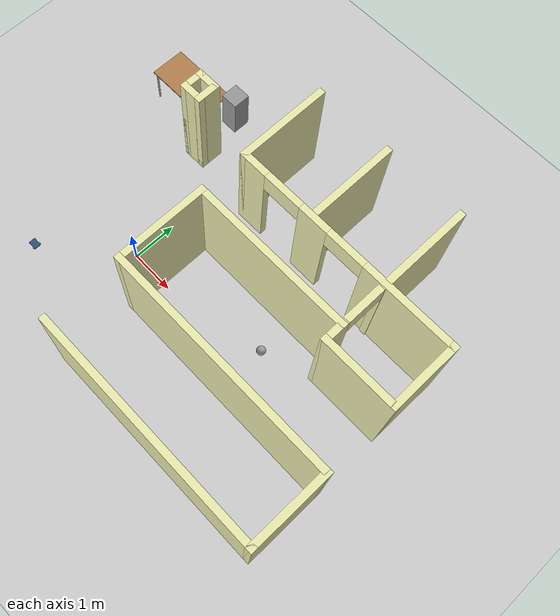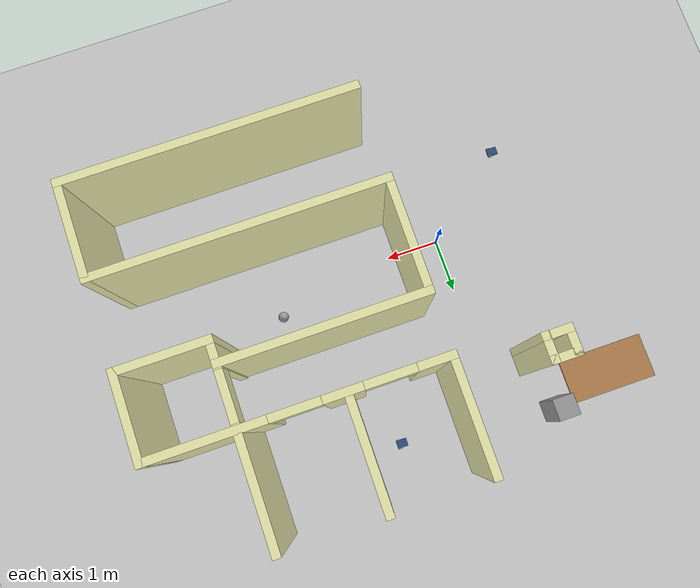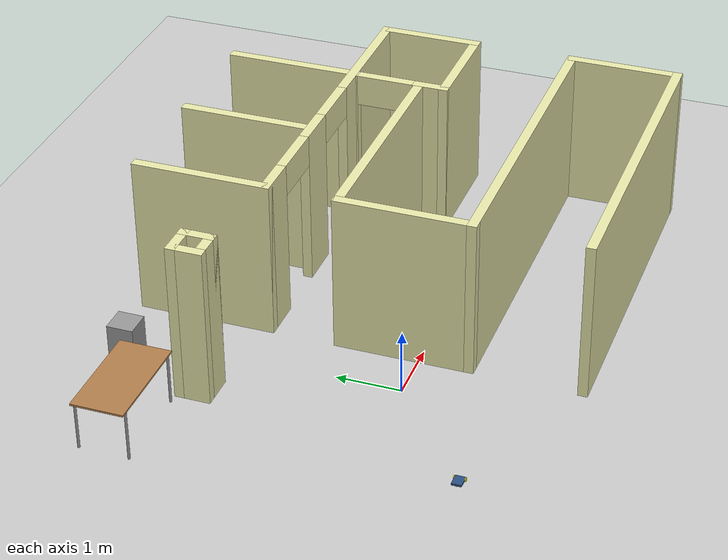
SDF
<sdf version="1.6">
 <world name="default">
  <model name="ground_plane">
   <static>1</static>
   <link name="link">
    <collision name="collision">
     <geometry><plane><normal>0 0 1</normal><size>100 100</size></plane></geometry>
     <surface><friction><ode><mu>100</mu><mu2>50</mu2></ode></friction></surface>
    </collision>
    <visual name="visual">
     <cast_shadows>0</cast_shadows>
     <geometry><plane><normal>0 0 1</normal><size>100 100</size></plane></geometry>
     <material>
      <script><uri>file://media/materials/scripts/gazebo.material</uri><name>Gazebo/Grey</name></script>
     </material>
    </visual>
   </link>
  </model>
  <model name="Building">
   <link name="Wall_113">
    <collision name="Wall_113_Collision">
     <geometry><box><size>1.75 0.15 2.5</size></box></geometry>
     <pose>0 0 1.25 0 -0 0</pose>
    </collision>
    <visual name="Wall_113_Visual">
     <pose>0 0 1.25 0 -0 0</pose>
     <geometry><box><size>1.75 0.15 2.5</size></box></geometry>
     <material>
      <script><uri>file://media/materials/scripts/gazebo.material</uri><name>Gazebo/Grey</name></script>
      <ambient>0.92 0.92 0.68 1</ambient>
     </material>
     <meta><layer>0</layer></meta>
    </visual>
    <pose>5.2 0.836388 0 0 -0 3.14159</pose>
   </link>
   <link name="Wall_115">
    <pose>4.4 1.51139 0 0 -0 1.5708</pose>
    <visual name="Wall_115_Visual_0">
     <pose>-0.461821 0 1.25 0 -0 0</pose>
     <geometry><box><size>0.576358 0.15 2.5</size></box></geometry>
     <material>
      <script><uri>file://media/materials/scripts/gazebo.material</uri><name>Gazebo/Grey</name></script>
      <ambient>0.92 0.92 0.68 1</ambient>
     </material>
     <meta><layer>0</layer></meta>
    </visual>
    <collision name="Wall_115_Collision_0">
     <geometry><box><size>0.576358 0.15 2.5</size></box></geometry>
     <pose>-0.461821 0 1.25 0 -0 0</pose>
    </collision>
    <visual name="Wall_115_Visual_1">
     <pose>0.738179 0 1.25 0 -0 0</pose>
     <geometry><box><size>0.023642 0.15 2.5</size></box></geometry>
     <material>
      <script><uri>file://media/materials/scripts/gazebo.material</uri><name>Gazebo/Grey</name></script>
      <ambient>0.92 0.92 0.68 1</ambient>
     </material>
     <meta><layer>0</layer></meta>
    </visual>
    <collision name="Wall_115_Collision_1">
     <geometry><box><size>0.023642 0.15 2.5</size></box></geometry>
     <pose>0.738179 0 1.25 0 -0 0</pose>
    </collision>
    <visual name="Wall_115_Visual_2">
     <pose>0.276358 0 2.25 0 -0 0</pose>
     <geometry><box><size>0.9 0.15 0.5</size></box></geometry>
     <material>
      <script><uri>file://media/materials/scripts/gazebo.material</uri><name>Gazebo/Grey</name></script>
      <ambient>0.92 0.92 0.68 1</ambient>
     </material>
     <meta><layer>0</layer></meta>
    </visual>
    <collision name="Wall_115_Collision_2">
     <geometry><box><size>0.9 0.15 0.5</size></box></geometry>
     <pose>0.276358 0 2.25 0 -0 0</pose>
    </collision>
   </link>
   <link name="Wall_117">
    <collision name="Wall_117_Collision">
     <geometry><box><size>3.75 0.15 2.5</size></box></geometry>
     <pose>0 0 1.25 0 -0 0</pose>
    </collision>
    <visual name="Wall_117_Visual">
     <pose>0 0 1.25 0 -0 0</pose>
     <geometry><box><size>3.75 0.15 2.5</size></box></geometry>
     <material>
      <script><uri>file://media/materials/scripts/gazebo.material</uri><name>Gazebo/Grey</name></script>
      <ambient>0.92 0.92 0.68 1</ambient>
     </material>
     <meta><layer>0</layer></meta>
    </visual>
    <pose>2.6 1.23639 0 0 -0 0</pose>
   </link>
   <link name="Wall_123">
    <collision name="Wall_123_Collision">
     <geometry><box><size>2 0.15 2.5</size></box></geometry>
     <pose>0 0 1.25 0 -0 0</pose>
    </collision>
    <visual name="Wall_123_Visual">
     <pose>0 0 1.25 0 -0 0</pose>
     <geometry><box><size>2 0.15 2.5</size></box></geometry>
     <material>
      <script><uri>file://media/materials/scripts/gazebo.material</uri><name>Gazebo/Grey</name></script>
      <ambient>0.92 0.92 0.68 1</ambient>
     </material>
     <meta><layer>0</layer></meta>
    </visual>
    <pose>4.40848 3.39488 0 0 -0 1.5708</pose>
   </link>
   <link name="Wall_126">
    <collision name="Wall_126_Collision">
     <geometry><box><size>2 0.15 2.5</size></box></geometry>
     <pose>0 0 1.25 0 -0 0</pose>
    </collision>
    <visual name="Wall_126_Visual">
     <pose>0 0 1.25 0 -0 0</pose>
     <geometry><box><size>2 0.15 2.5</size></box></geometry>
     <material>
      <script><uri>file://media/materials/scripts/gazebo.material</uri><name>Gazebo/Grey</name></script>
      <ambient>0.92 0.92 0.68 1</ambient>
     </material>
     <meta><layer>0</layer></meta>
    </visual>
    <pose>2.573 3.41139 0 0 0 -1.5708</pose>
   </link>
   <link name="Wall_14">
    <collision name="Wall_14_Collision">
     <geometry><box><size>1.85 0.15 2.5</size></box></geometry>
     <pose>0 0 1.25 0 -0 0</pose>
    </collision>
    <visual name="Wall_14_Visual">
     <pose>0 0 1.25 0 -0 0</pose>
     <geometry><box><size>1.85 0.15 2.5</size></box></geometry>
     <material>
      <script><uri>file://media/materials/scripts/gazebo.material</uri><name>Gazebo/Grey</name></script>
      <ambient>0.92 0.92 0.68 1</ambient>
     </material>
     <meta><layer>0</layer></meta>
    </visual>
    <pose>6 -1.61361 0 0 -0 1.5708</pose>
   </link>
   <link name="Wall_16">
    <collision name="Wall_16_Collision">
     <geometry><box><size>5.35 0.15 2.5</size></box></geometry>
     <pose>0 0 1.25 0 -0 0</pose>
    </collision>
    <visual name="Wall_16_Visual">
     <pose>0 0 1.25 0 -0 0</pose>
     <geometry><box><size>5.35 0.15 2.5</size></box></geometry>
     <material>
      <script><uri>file://media/materials/scripts/gazebo.material</uri><name>Gazebo/Grey</name></script>
      <ambient>0.92 0.92 0.68 1</ambient>
     </material>
     <meta><layer>0</layer></meta>
    </visual>
    <pose>3.4 -0.763612 0 0 -0 3.14159</pose>
   </link>
   <link name="Wall_18">
    <collision name="Wall_18_Collision">
     <geometry><box><size>2.15 0.15 2.5</size></box></geometry>
     <pose>0 0 1.25 0 -0 0</pose>
    </collision>
    <visual name="Wall_18_Visual">
     <pose>0 0 1.25 0 -0 0</pose>
     <geometry><box><size>2.15 0.15 2.5</size></box></geometry>
     <material>
      <script><uri>file://media/materials/scripts/gazebo.material</uri><name>Gazebo/Grey</name></script>
      <ambient>0.92 0.92 0.68 1</ambient>
     </material>
     <meta><layer>0</layer></meta>
    </visual>
    <pose>0.8 0.236388 0 0 -0 1.5708</pose>
   </link>
   <link name="Wall_22">
    <collision name="Wall_22_Collision">
     <geometry><box><size>2.15 0.15 2.5</size></box></geometry>
     <pose>0 0 1.25 0 -0 0</pose>
    </collision>
    <visual name="Wall_22_Visual">
     <pose>0 0 1.25 0 -0 0</pose>
     <geometry><box><size>2.15 0.15 2.5</size></box></geometry>
     <material>
      <script><uri>file://media/materials/scripts/gazebo.material</uri><name>Gazebo/Grey</name></script>
      <ambient>0.92 0.92 0.68 1</ambient>
     </material>
     <meta><layer>0</layer></meta>
    </visual>
    <pose>0.8 3.33639 0 0 0 -1.5708</pose>
   </link>
   <link name="Wall_24">
    <pose>3.4 2.33639 0 0 -0 0</pose>
    <visual name="Wall_24_Visual_0">
     <pose>-2.33821 0 1.25 0 -0 0</pose>
     <geometry><box><size>0.673574 0.15 2.5</size></box></geometry>
     <material>
      <script><uri>file://media/materials/scripts/gazebo.material</uri><name>Gazebo/Grey</name></script>
      <ambient>0.92 0.92 0.68 1</ambient>
     </material>
     <meta><layer>0</layer></meta>
    </visual>
    <collision name="Wall_24_Collision_0">
     <geometry><box><size>0.673574 0.15 2.5</size></box></geometry>
     <pose>-2.33821 0 1.25 0 -0 0</pose>
    </collision>
    <visual name="Wall_24_Visual_1">
     <pose>-0.749839 0 1.25 0 -0 0</pose>
     <geometry><box><size>0.703173 0.15 2.5</size></box></geometry>
     <material>
      <script><uri>file://media/materials/scripts/gazebo.material</uri><name>Gazebo/Grey</name></script>
      <ambient>0.92 0.92 0.68 1</ambient>
     </material>
     <meta><layer>0</layer></meta>
    </visual>
    <collision name="Wall_24_Collision_1">
     <geometry><box><size>0.703173 0.15 2.5</size></box></geometry>
     <pose>-0.749839 0 1.25 0 -0 0</pose>
    </collision>
    <visual name="Wall_24_Visual_2">
     <pose>1.58837 0 1.25 0 -0 0</pose>
     <geometry><box><size>2.17325 0.15 2.5</size></box></geometry>
     <material>
      <script><uri>file://media/materials/scripts/gazebo.material</uri><name>Gazebo/Grey</name></script>
      <ambient>0.92 0.92 0.68 1</ambient>
     </material>
     <meta><layer>0</layer></meta>
    </visual>
    <collision name="Wall_24_Collision_2">
     <geometry><box><size>2.17325 0.15 2.5</size></box></geometry>
     <pose>1.58837 0 1.25 0 -0 0</pose>
    </collision>
    <visual name="Wall_24_Visual_3">
     <pose>-1.55143 0 2.25 0 -0 0</pose>
     <geometry><box><size>0.9 0.15 0.5</size></box></geometry>
     <material>
      <script><uri>file://media/materials/scripts/gazebo.material</uri><name>Gazebo/Grey</name></script>
      <ambient>0.92 0.92 0.68 1</ambient>
     </material>
     <meta><layer>0</layer></meta>
    </visual>
    <collision name="Wall_24_Collision_3">
     <geometry><box><size>0.9 0.15 0.5</size></box></geometry>
     <pose>-1.55143 0 2.25 0 -0 0</pose>
    </collision>
    <visual name="Wall_24_Visual_4">
     <pose>0.051747 0 2.25 0 -0 0</pose>
     <geometry><box><size>0.9 0.15 0.5</size></box></geometry>
     <material>
      <script><uri>file://media/materials/scripts/gazebo.material</uri><name>Gazebo/Grey</name></script>
      <ambient>0.92 0.92 0.68 1</ambient>
     </material>
     <meta><layer>0</layer></meta>
    </visual>
    <collision name="Wall_24_Collision_4">
     <geometry><box><size>0.9 0.15 0.5</size></box></geometry>
     <pose>0.051747 0 2.25 0 -0 0</pose>
    </collision>
   </link>
   <link name="Wall_26">
    <collision name="Wall_26_Collision">
     <geometry><box><size>1.65 0.15 2.5</size></box></geometry>
     <pose>0 0 1.25 0 -0 0</pose>
    </collision>
    <visual name="Wall_26_Visual">
     <pose>0 0 1.25 0 -0 0</pose>
     <geometry><box><size>1.65 0.15 2.5</size></box></geometry>
     <material>
      <script><uri>file://media/materials/scripts/gazebo.material</uri><name>Gazebo/Grey</name></script>
      <ambient>0.92 0.92 0.68 1</ambient>
     </material>
     <meta><layer>0</layer></meta>
    </visual>
    <pose>6 1.58639 0 0 0 -1.5708</pose>
   </link>
   <link name="Wall_71">
    <collision name="Wall_71_Collision">
     <geometry><box><size>0.55 0.15 2.5</size></box></geometry>
     <pose>0 0 1.25 0 -0 0</pose>
    </collision>
    <visual name="Wall_71_Visual">
     <pose>0 0 1.25 0 -0 0</pose>
     <geometry><box><size>0.55 0.15 2.5</size></box></geometry>
     <material>
      <script><uri>file://media/materials/scripts/gazebo.material</uri><name>Gazebo/Grey</name></script>
      <ambient>0.92 0.92 0.68 1</ambient>
     </material>
     <meta><layer>0</layer></meta>
    </visual>
    <pose>-0.9 2.53639 0 0 -0 0</pose>
   </link>
   <link name="Wall_73">
    <collision name="Wall_73_Collision">
     <geometry><box><size>0.55 0.15 2.5</size></box></geometry>
     <pose>0 0 1.25 0 -0 0</pose>
    </collision>
    <visual name="Wall_73_Visual">
     <pose>0 0 1.25 0 -0 0</pose>
     <geometry><box><size>0.55 0.15 2.5</size></box></geometry>
     <material>
      <script><uri>file://media/materials/scripts/gazebo.material</uri><name>Gazebo/Grey</name></script>
      <ambient>0.92 0.92 0.68 1</ambient>
     </material>
     <meta><layer>0</layer></meta>
    </visual>
    <pose>-0.9 2.93639 0 0 -0 0</pose>
   </link>
   <link name="Wall_75">
    <collision name="Wall_75_Collision">
     <geometry><box><size>0.55 0.15 2.5</size></box></geometry>
     <pose>0 0 1.25 0 -0 0</pose>
    </collision>
    <visual name="Wall_75_Visual">
     <pose>0 0 1.25 0 -0 0</pose>
     <geometry><box><size>0.55 0.15 2.5</size></box></geometry>
     <material>
      <script><uri>file://media/materials/scripts/gazebo.material</uri><name>Gazebo/Grey</name></script>
      <ambient>0.92 0.92 0.68 1</ambient>
     </material>
     <meta><layer>0</layer></meta>
    </visual>
    <pose>-1.1 2.73639 0 0 0 -1.5708</pose>
   </link>
   <link name="Wall_78">
    <collision name="Wall_78_Collision">
     <geometry><box><size>0.55 0.15 2.5</size></box></geometry>
     <pose>0 0 1.25 0 -0 0</pose>
    </collision>
    <visual name="Wall_78_Visual">
     <pose>0 0 1.25 0 -0 0</pose>
     <geometry><box><size>0.55 0.15 2.5</size></box></geometry>
     <material>
      <script><uri>file://media/materials/scripts/gazebo.material</uri><name>Gazebo/Grey</name></script>
      <ambient>0.92 0.92 0.68 1</ambient>
     </material>
     <meta><layer>0</layer></meta>
    </visual>
    <pose>-0.7 2.73639 0 0 0 -1.5708</pose>
   </link>
   <link name="Wall_8">
    <collision name="Wall_8_Collision">
     <geometry><box><size>5.35 0.15 2.5</size></box></geometry>
     <pose>0 0 1.25 0 -0 0</pose>
    </collision>
    <visual name="Wall_8_Visual">
     <pose>0 0 1.25 0 -0 0</pose>
     <geometry><box><size>5.35 0.15 2.5</size></box></geometry>
     <material>
      <script><uri>file://media/materials/scripts/gazebo.material</uri><name>Gazebo/Grey</name></script>
      <ambient>0.92 0.92 0.68 1</ambient>
     </material>
     <meta><layer>0</layer></meta>
    </visual>
    <pose>3.4 -2.46361 0 0 -0 0</pose>
   </link>
   <static>1</static>
  </model>
  <model name="tablealt_0_clone_9">
   <link name="link">
    <inertial>
     <mass>1</mass>
     <inertia><ixx>1</ixx><ixy>0</ixy><ixz>0</ixz><iyy>1</iyy><iyz>0</iyz><izz>1</izz></inertia>
    </inertial>
    <visual name="back_right_leg">
     <pose>-0.68 -0.38 0.4 0 -0 0</pose>
     <geometry><cylinder><radius>0.02</radius><length>0.8</length></cylinder></geometry>
     <material>
      <script><uri>file://media/materials/scripts/gazebo.material</uri><name>Gazebo/Grey</name></script>
      <shader type="pixel"><normal_map>__default__</normal_map></shader>
      <ambient>0.3 0.3 0.3 1</ambient>
      <diffuse>0.7 0.7 0.7 1</diffuse>
      <specular>0.01 0.01 0.01 1</specular>
      <emissive>0 0 0 1</emissive>
     </material>
    </visual>
    <visual name="back_left_leg">
     <pose>-0.68 0.38 0.4 0 -0 0</pose>
     <geometry><cylinder><radius>0.02</radius><length>0.8</length></cylinder></geometry>
     <material>
      <script><uri>file://media/materials/scripts/gazebo.material</uri><name>Gazebo/Grey</name></script>
      <shader type="pixel"><normal_map>__default__</normal_map></shader>
      <ambient>0.3 0.3 0.3 1</ambient>
      <diffuse>0.7 0.7 0.7 1</diffuse>
      <specular>0.01 0.01 0.01 1</specular>
      <emissive>0 0 0 1</emissive>
     </material>
    </visual>
    <visual name="visual1">
     <pose>0 0 0.8 0 -0 0</pose>
     <geometry><box><size>1.57 0.8 0.03</size></box></geometry>
     <material>
      <script><uri>file://media/materials/scripts/gazebo.material</uri><name>Gazebo/Wood</name></script>
      <shader type="pixel"><normal_map>__default__</normal_map></shader>
      <ambient>0.92 0.92 0.68 1</ambient>
      <diffuse>1 1 1 1</diffuse>
      <specular>0.2 0.2 0.2 1</specular>
      <emissive>0 0 0 1</emissive>
     </material>
    </visual>
    <visual name="front_left_leg">
     <pose>0.68 0.38 0.4 0 -0 0</pose>
     <geometry><cylinder><radius>0.02</radius><length>0.8</length></cylinder></geometry>
     <material>
      <script><uri>file://media/materials/scripts/gazebo.material</uri><name>Gazebo/Grey</name></script>
      <shader type="pixel"><normal_map>__default__</normal_map></shader>
      <ambient>0.3 0.3 0.3 1</ambient>
      <diffuse>0.7 0.7 0.7 1</diffuse>
      <specular>0.01 0.01 0.01 1</specular>
      <emissive>0 0 0 1</emissive>
     </material>
    </visual>
    <visual name="front_right_leg">
     <pose>0.68 -0.38 0.4 0 -0 0</pose>
     <geometry><cylinder><radius>0.02</radius><length>0.8</length></cylinder></geometry>
     <material>
      <script><uri>file://media/materials/scripts/gazebo.material</uri><name>Gazebo/Grey</name></script>
      <shader type="pixel"><normal_map>__default__</normal_map></shader>
      <ambient>0.3 0.3 0.3 1</ambient>
      <diffuse>0.7 0.7 0.7 1</diffuse>
      <specular>0.01 0.01 0.01 1</specular>
      <emissive>0 0 0 1</emissive>
     </material>
    </visual>
    <collision name="front_right_leg">
     <pose>0.68 -0.38 0.4 0 -0 0</pose>
     <geometry><cylinder><radius>0.02</radius><length>0.8</length></cylinder></geometry>
     <surface>
      <friction>
       <ode><mu>1</mu><mu2>1</mu2><fdir1>0 0 0</fdir1><slip1>0</slip1><slip2>0</slip2></ode>
       <torsional>
        <coefficient>1</coefficient>
        <patch_radius>0</patch_radius>
        <surface_radius>0</surface_radius>
        <use_patch_radius>1</use_patch_radius>
        <ode><slip>0</slip></ode>
       </torsional>
      </friction>
      <bounce><restitution_coefficient>0</restitution_coefficient><threshold>1e+06</threshold></bounce>
      <contact>
       <collide_without_contact>0</collide_without_contact>
       <collide_without_contact_bitmask>1</collide_without_contact_bitmask>
       <collide_bitmask>1</collide_bitmask>
       <ode>
        <soft_cfm>0</soft_cfm>
        <soft_erp>0.2</soft_erp>
        <kp>1e+13</kp>
        <kd>1</kd>
        <max_vel>0.01</max_vel>
        <min_depth>0</min_depth>
       </ode>
       <bullet>
        <split_impulse>1</split_impulse>
        <split_impulse_penetration_threshold>-0.01</split_impulse_penetration_threshold>
        <soft_cfm>0</soft_cfm>
        <soft_erp>0.2</soft_erp>
        <kp>1e+13</kp>
        <kd>1</kd>
       </bullet>
      </contact>
     </surface>
    </collision>
    <collision name="surface">
     <pose>0 0 0.8 0 -0 0</pose>
     <geometry><box><size>1.5 0.8 0.03</size></box></geometry>
     <surface>
      <friction>
       <ode><mu>0.6</mu><mu2>0.6</mu2><fdir1>0 0 0</fdir1><slip1>0</slip1><slip2>0</slip2></ode>
       <torsional>
        <coefficient>1</coefficient>
        <patch_radius>0</patch_radius>
        <surface_radius>0</surface_radius>
        <use_patch_radius>1</use_patch_radius>
        <ode><slip>0</slip></ode>
       </torsional>
      </friction>
      <bounce><restitution_coefficient>0</restitution_coefficient><threshold>1e+06</threshold></bounce>
      <contact>
       <collide_without_contact>0</collide_without_contact>
       <collide_without_contact_bitmask>1</collide_without_contact_bitmask>
       <collide_bitmask>1</collide_bitmask>
       <ode>
        <soft_cfm>0</soft_cfm>
        <soft_erp>0.2</soft_erp>
        <kp>1e+13</kp>
        <kd>1</kd>
        <max_vel>0.01</max_vel>
        <min_depth>0</min_depth>
       </ode>
       <bullet>
        <split_impulse>1</split_impulse>
        <split_impulse_penetration_threshold>-0.01</split_impulse_penetration_threshold>
        <soft_cfm>0</soft_cfm>
        <soft_erp>0.2</soft_erp>
        <kp>1e+13</kp>
        <kd>1</kd>
       </bullet>
      </contact>
     </surface>
    </collision>
    <collision name="front_left_leg">
     <pose>0.68 0.38 0.4 0 -0 0</pose>
     <geometry><cylinder><radius>0.02</radius><length>0.8</length></cylinder></geometry>
     <surface>
      <friction>
       <ode><mu>1</mu><mu2>1</mu2><fdir1>0 0 0</fdir1><slip1>0</slip1><slip2>0</slip2></ode>
       <torsional>
        <coefficient>1</coefficient>
        <patch_radius>0</patch_radius>
        <surface_radius>0</surface_radius>
        <use_patch_radius>1</use_patch_radius>
        <ode><slip>0</slip></ode>
       </torsional>
      </friction>
      <bounce><restitution_coefficient>0</restitution_coefficient><threshold>1e+06</threshold></bounce>
      <contact>
       <collide_without_contact>0</collide_without_contact>
       <collide_without_contact_bitmask>1</collide_without_contact_bitmask>
       <collide_bitmask>1</collide_bitmask>
       <ode>
        <soft_cfm>0</soft_cfm>
        <soft_erp>0.2</soft_erp>
        <kp>1e+13</kp>
        <kd>1</kd>
        <max_vel>0.01</max_vel>
        <min_depth>0</min_depth>
       </ode>
       <bullet>
        <split_impulse>1</split_impulse>
        <split_impulse_penetration_threshold>-0.01</split_impulse_penetration_threshold>
        <soft_cfm>0</soft_cfm>
        <soft_erp>0.2</soft_erp>
        <kp>1e+13</kp>
        <kd>1</kd>
       </bullet>
      </contact>
     </surface>
    </collision>
    <collision name="back_left_leg">
     <pose>-0.68 0.38 0.4 0 -0 0</pose>
     <geometry><cylinder><radius>0.02</radius><length>0.8</length></cylinder></geometry>
     <surface>
      <friction>
       <ode><mu>1</mu><mu2>1</mu2><fdir1>0 0 0</fdir1><slip1>0</slip1><slip2>0</slip2></ode>
       <torsional>
        <coefficient>1</coefficient>
        <patch_radius>0</patch_radius>
        <surface_radius>0</surface_radius>
        <use_patch_radius>1</use_patch_radius>
        <ode><slip>0</slip></ode>
       </torsional>
      </friction>
      <bounce><restitution_coefficient>0</restitution_coefficient><threshold>1e+06</threshold></bounce>
      <contact>
       <collide_without_contact>0</collide_without_contact>
       <collide_without_contact_bitmask>1</collide_without_contact_bitmask>
       <collide_bitmask>1</collide_bitmask>
       <ode>
        <soft_cfm>0</soft_cfm>
        <soft_erp>0.2</soft_erp>
        <kp>1e+13</kp>
        <kd>1</kd>
        <max_vel>0.01</max_vel>
        <min_depth>0</min_depth>
       </ode>
       <bullet>
        <split_impulse>1</split_impulse>
        <split_impulse_penetration_threshold>-0.01</split_impulse_penetration_threshold>
        <soft_cfm>0</soft_cfm>
        <soft_erp>0.2</soft_erp>
        <kp>1e+13</kp>
        <kd>1</kd>
       </bullet>
      </contact>
     </surface>
    </collision>
    <collision name="back_right_leg">
     <pose>-0.68 -0.38 0.4 0 -0 0</pose>
     <geometry><cylinder><radius>0.02</radius><length>0.8</length></cylinder></geometry>
     <surface>
      <friction>
       <ode><mu>1</mu><mu2>1</mu2><fdir1>0 0 0</fdir1><slip1>0</slip1><slip2>0</slip2></ode>
       <torsional>
        <coefficient>1</coefficient>
        <patch_radius>0</patch_radius>
        <surface_radius>0</surface_radius>
        <use_patch_radius>1</use_patch_radius>
        <ode><slip>0</slip></ode>
       </torsional>
      </friction>
      <bounce><restitution_coefficient>0</restitution_coefficient><threshold>1e+06</threshold></bounce>
      <contact>
       <collide_without_contact>0</collide_without_contact>
       <collide_without_contact_bitmask>1</collide_without_contact_bitmask>
       <collide_bitmask>1</collide_bitmask>
       <ode>
        <soft_cfm>0</soft_cfm>
        <soft_erp>0.2</soft_erp>
        <kp>1e+13</kp>
        <kd>1</kd>
        <max_vel>0.01</max_vel>
        <min_depth>0</min_depth>
       </ode>
       <bullet>
        <split_impulse>1</split_impulse>
        <split_impulse_penetration_threshold>-0.01</split_impulse_penetration_threshold>
        <soft_cfm>0</soft_cfm>
        <soft_erp>0.2</soft_erp>
        <kp>1e+13</kp>
        <kd>1</kd>
       </bullet>
      </contact>
     </surface>
    </collision>
   </link>
   <static>1</static>
   <pose>-1.99 3.39 0 0 -0 0</pose>
  </model>
  <model name="plantbox_clone">
   <link name="link_0">
    <inertial>
     <mass>1</mass>
     <inertia>
      <ixx>0.166667</ixx>
      <ixy>0</ixy>
      <ixz>0</ixz>
      <iyy>0.166667</iyy>
      <iyz>0</iyz>
      <izz>0.166667</izz>
     </inertia>
    </inertial>
    <visual name="visual">
     <geometry><box><size>0.4 0.4 1</size></box></geometry>
     <material>
      <lighting>1</lighting>
      <script><uri>file://media/materials/scripts/gazebo.material</uri><name>Gazebo/Grey</name></script>
      <shader type="pixel"><normal_map>__default__</normal_map></shader>
      <ambient>0.3 0.3 0.3 1</ambient>
      <diffuse>0.92 0.92 0.92 1</diffuse>
      <specular>0.92 0.92 0.92 1</specular>
      <emissive>0 0 0 1</emissive>
     </material>
    </visual>
    <collision name="collision">
     <geometry><box><size>0.4 0.4 1</size></box></geometry>
     <surface>
      <friction>
       <ode><mu>1</mu><mu2>1</mu2><fdir1>0 0 0</fdir1><slip1>0</slip1><slip2>0</slip2></ode>
       <torsional>
        <coefficient>1</coefficient>
        <patch_radius>0</patch_radius>
        <surface_radius>0</surface_radius>
        <use_patch_radius>1</use_patch_radius>
        <ode><slip>0</slip></ode>
       </torsional>
      </friction>
      <bounce><restitution_coefficient>0</restitution_coefficient><threshold>1e+06</threshold></bounce>
      <contact>
       <collide_without_contact>0</collide_without_contact>
       <collide_without_contact_bitmask>1</collide_without_contact_bitmask>
       <collide_bitmask>1</collide_bitmask>
       <ode>
        <soft_cfm>0</soft_cfm>
        <soft_erp>0.2</soft_erp>
        <kp>1e+13</kp>
        <kd>1</kd>
        <max_vel>0.01</max_vel>
        <min_depth>0</min_depth>
       </ode>
       <bullet>
        <split_impulse>1</split_impulse>
        <split_impulse_penetration_threshold>-0.01</split_impulse_penetration_threshold>
        <soft_cfm>0</soft_cfm>
        <soft_erp>0.2</soft_erp>
        <kp>1e+13</kp>
        <kd>1</kd>
       </bullet>
      </contact>
     </surface>
    </collision>
   </link>
   <static>0</static>
   <pose>-0.999993 3.79 0.499999 -3e-06 -3e-06 -0.000118</pose>
  </model>
  <model name="RCRobot">
   <link name="link_1">
    <pose>0.05 -0.0825 0.0025 1.5708 -0 0</pose>
    <inertial>
     <mass>1</mass>
     <inertia><ixx>0.145833</ixx><ixy>0</ixy><ixz>0</ixz><iyy>0.145833</iyy><iyz>0</iyz><izz>0.125</izz></inertia>
    </inertial>
    <visual name="visual">
     <geometry><cylinder><radius>0.03</radius><length>0.015</length></cylinder></geometry>
     <material>
      <lighting>1</lighting>
      <script><uri>file://media/materials/scripts/gazebo.material</uri><name>Gazebo/Grey</name></script>
      <shader type="pixel"><normal_map>__default__</normal_map></shader>
      <ambient>0.98 0.86 0.05 1</ambient>
      <diffuse>0.98 0.86 0.05 1</diffuse>
      <specular>0.98 0.86 0.05 1</specular>
      <emissive>0 0 0 1</emissive>
     </material>
    </visual>
    <collision name="collision">
     <geometry><cylinder><radius>0.03</radius><length>0.015</length></cylinder></geometry>
     <surface>
      <friction>
       <ode><mu>1</mu><mu2>1</mu2><fdir1>0 0 0</fdir1><slip1>0</slip1><slip2>0</slip2></ode>
       <torsional>
        <coefficient>1</coefficient>
        <patch_radius>0</patch_radius>
        <surface_radius>0</surface_radius>
        <use_patch_radius>1</use_patch_radius>
        <ode><slip>0</slip></ode>
       </torsional>
      </friction>
      <bounce><restitution_coefficient>0</restitution_coefficient><threshold>1e+06</threshold></bounce>
      <contact>
       <collide_without_contact>0</collide_without_contact>
       <collide_without_contact_bitmask>1</collide_without_contact_bitmask>
       <collide_bitmask>1</collide_bitmask>
       <ode>
        <soft_cfm>0</soft_cfm>
        <soft_erp>0.2</soft_erp>
        <kp>1e+13</kp>
        <kd>1</kd>
        <max_vel>0.01</max_vel>
        <min_depth>0</min_depth>
       </ode>
       <bullet>
        <split_impulse>1</split_impulse>
        <split_impulse_penetration_threshold>-0.01</split_impulse_penetration_threshold>
        <soft_cfm>0</soft_cfm>
        <soft_erp>0.2</soft_erp>
        <kp>1e+13</kp>
        <kd>1</kd>
       </bullet>
      </contact>
     </surface>
    </collision>
   </link>
   <link name="link_1_clone">
    <pose>0.05 0.0825 0.0025 1.5708 -0 0</pose>
    <inertial>
     <mass>1</mass>
     <inertia><ixx>0.145833</ixx><ixy>0</ixy><ixz>0</ixz><iyy>0.145833</iyy><iyz>0</iyz><izz>0.125</izz></inertia>
    </inertial>
    <visual name="visual">
     <geometry><cylinder><radius>0.03</radius><length>0.015</length></cylinder></geometry>
     <material>
      <lighting>1</lighting>
      <script><uri>file://media/materials/scripts/gazebo.material</uri><name>Gazebo/Grey</name></script>
      <shader type="pixel"><normal_map>__default__</normal_map></shader>
      <ambient>0.98 0.86 0.05 1</ambient>
      <diffuse>0.98 0.86 0.05 1</diffuse>
      <specular>0.98 0.86 0.05 1</specular>
      <emissive>0 0 0 1</emissive>
     </material>
    </visual>
    <collision name="collision">
     <geometry><cylinder><radius>0.03</radius><length>0.015</length></cylinder></geometry>
     <surface>
      <friction>
       <ode><mu>1</mu><mu2>1</mu2><fdir1>0 0 0</fdir1><slip1>0</slip1><slip2>0</slip2></ode>
       <torsional>
        <coefficient>1</coefficient>
        <patch_radius>0</patch_radius>
        <surface_radius>0</surface_radius>
        <use_patch_radius>1</use_patch_radius>
        <ode><slip>0</slip></ode>
       </torsional>
      </friction>
      <bounce><restitution_coefficient>0</restitution_coefficient><threshold>1e+06</threshold></bounce>
      <contact>
       <collide_without_contact>0</collide_without_contact>
       <collide_without_contact_bitmask>1</collide_without_contact_bitmask>
       <collide_bitmask>1</collide_bitmask>
       <ode>
        <soft_cfm>0</soft_cfm>
        <soft_erp>0.2</soft_erp>
        <kp>1e+13</kp>
        <kd>1</kd>
        <max_vel>0.01</max_vel>
        <min_depth>0</min_depth>
       </ode>
       <bullet>
        <split_impulse>1</split_impulse>
        <split_impulse_penetration_threshold>-0.01</split_impulse_penetration_threshold>
        <soft_cfm>0</soft_cfm>
        <soft_erp>0.2</soft_erp>
        <kp>1e+13</kp>
        <kd>1</kd>
       </bullet>
      </contact>
     </surface>
    </collision>
   </link>
   <link name="link_2">
    <pose>-0.01 0 0.0025 0 -0 0</pose>
    <inertial>
     <mass>1</mass>
     <inertia>
      <ixx>0.166667</ixx>
      <ixy>0</ixy>
      <ixz>0</ixz>
      <iyy>0.166667</iyy>
      <iyz>0</iyz>
      <izz>0.166667</izz>
     </inertia>
    </inertial>
    <visual name="visual">
     <geometry><box><size>0.2 0.15 0.03</size></box></geometry>
     <material>
      <lighting>1</lighting>
      <script><uri>file://media/materials/scripts/gazebo.material</uri><name>Gazebo/Grey</name></script>
      <shader type="pixel"><normal_map>__default__</normal_map></shader>
      <ambient>0.17 0.31 0.51 1</ambient>
      <diffuse>0.17 0.31 0.51 1</diffuse>
      <specular>0.17 0.31 0.51 1</specular>
      <emissive>0 0 0 1</emissive>
     </material>
    </visual>
    <collision name="collision">
     <geometry><box><size>0.2 0.15 0.03</size></box></geometry>
     <surface>
      <friction>
       <ode><mu>1</mu><mu2>1</mu2><fdir1>0 0 0</fdir1><slip1>0</slip1><slip2>0</slip2></ode>
       <torsional>
        <coefficient>1</coefficient>
        <patch_radius>0</patch_radius>
        <surface_radius>0</surface_radius>
        <use_patch_radius>1</use_patch_radius>
        <ode><slip>0</slip></ode>
       </torsional>
      </friction>
      <bounce><restitution_coefficient>0</restitution_coefficient><threshold>1e+06</threshold></bounce>
      <contact>
       <collide_without_contact>0</collide_without_contact>
       <collide_without_contact_bitmask>1</collide_without_contact_bitmask>
       <collide_bitmask>1</collide_bitmask>
       <ode>
        <soft_cfm>0</soft_cfm>
        <soft_erp>0.2</soft_erp>
        <kp>1e+13</kp>
        <kd>1</kd>
        <max_vel>0.01</max_vel>
        <min_depth>0</min_depth>
       </ode>
       <bullet>
        <split_impulse>1</split_impulse>
        <split_impulse_penetration_threshold>-0.01</split_impulse_penetration_threshold>
        <soft_cfm>0</soft_cfm>
        <soft_erp>0.2</soft_erp>
        <kp>1e+13</kp>
        <kd>1</kd>
       </bullet>
      </contact>
     </surface>
    </collision>
   </link>
   <link name="link_3">
    <pose>-0.09 0 -0.0075 0 -0 0</pose>
    <inertial>
     <mass>1</mass>
     <inertia><ixx>0.1</ixx><ixy>0</ixy><ixz>0</ixz><iyy>0.1</iyy><iyz>0</iyz><izz>0.1</izz></inertia>
    </inertial>
    <visual name="visual">
     <geometry><sphere><radius>0.02</radius></sphere></geometry>
     <material>
      <lighting>1</lighting>
      <script><uri>file://media/materials/scripts/gazebo.material</uri><name>Gazebo/Grey</name></script>
      <shader type="pixel"><normal_map>__default__</normal_map></shader>
      <ambient>0.96 0.96 0.96 1</ambient>
      <diffuse>0.96 0.96 0.96 1</diffuse>
      <specular>0.96 0.96 0.96 1</specular>
      <emissive>0 0 0 1</emissive>
     </material>
    </visual>
    <collision name="collision">
     <geometry><sphere><radius>0.02</radius></sphere></geometry>
     <surface>
      <friction>
       <ode><mu>1</mu><mu2>1</mu2><fdir1>0 0 0</fdir1><slip1>0</slip1><slip2>0</slip2></ode>
       <torsional>
        <coefficient>1</coefficient>
        <patch_radius>0</patch_radius>
        <surface_radius>0</surface_radius>
        <use_patch_radius>1</use_patch_radius>
        <ode><slip>0</slip></ode>
       </torsional>
      </friction>
      <bounce><restitution_coefficient>0</restitution_coefficient><threshold>1e+06</threshold></bounce>
      <contact>
       <collide_without_contact>0</collide_without_contact>
       <collide_without_contact_bitmask>1</collide_without_contact_bitmask>
       <collide_bitmask>1</collide_bitmask>
       <ode>
        <soft_cfm>0</soft_cfm>
        <soft_erp>0.2</soft_erp>
        <kp>1e+13</kp>
        <kd>1</kd>
        <max_vel>0.01</max_vel>
        <min_depth>0</min_depth>
       </ode>
       <bullet>
        <split_impulse>1</split_impulse>
        <split_impulse_penetration_threshold>-0.01</split_impulse_penetration_threshold>
        <soft_cfm>0</soft_cfm>
        <soft_erp>0.2</soft_erp>
        <kp>1e+13</kp>
        <kd>1</kd>
       </bullet>
      </contact>
     </surface>
    </collision>
   </link>
   <joint name="link_2_JOINT_10" type="revolute">
    <parent>link_2</parent>
    <child>link_1</child>
    <axis>
     <xyz>0 0 1</xyz>
     <use_parent_model_frame>0</use_parent_model_frame>
     <limit>
      <lower>-1.79769e+308</lower>
      <upper>1.79769e+308</upper>
      <effort>-1</effort>
      <velocity>-1</velocity>
     </limit>
     <dynamics>
      <spring_reference>0</spring_reference>
      <spring_stiffness>0</spring_stiffness>
      <damping>0</damping>
     </dynamics>
    </axis>
    <physics>
     <ode><limit><cfm>0</cfm><erp>0.2</erp></limit><suspension><cfm>0</cfm><erp>0.2</erp></suspension></ode>
    </physics>
   </joint>
   <joint name="link_2_JOINT_11" type="revolute">
    <parent>link_2</parent>
    <child>link_1_clone</child>
    <axis>
     <xyz>1 0 0</xyz>
     <use_parent_model_frame>0</use_parent_model_frame>
     <limit>
      <lower>-1.79769e+308</lower>
      <upper>1.79769e+308</upper>
      <effort>-1</effort>
      <velocity>-1</velocity>
     </limit>
     <dynamics>
      <spring_reference>0</spring_reference>
      <spring_stiffness>0</spring_stiffness>
      <damping>0</damping>
     </dynamics>
    </axis>
    <physics>
     <ode><limit><cfm>0</cfm><erp>0.2</erp></limit><suspension><cfm>0</cfm><erp>0.2</erp></suspension></ode>
    </physics>
   </joint>
   <joint name="link_2_JOINT_13" type="ball">
    <parent>link_2</parent>
    <child>link_3</child>
    <physics>
     <ode><limit><cfm>0</cfm><erp>0.2</erp></limit><suspension><cfm>0</cfm><erp>0.2</erp></suspension></ode>
    </physics>
   </joint>
   <static>0</static>
   <pose>1.94819 3.46923 0.029664 2e-06 0.043241 -0.007433</pose>
  </model>
  <model name="RCRobot_0">
   <link name="link_1">
    <pose>0.05 -0.0825 0.0025 1.5708 -0 0</pose>
    <inertial>
     <mass>1</mass>
     <inertia><ixx>0.145833</ixx><ixy>0</ixy><ixz>0</ixz><iyy>0.145833</iyy><iyz>0</iyz><izz>0.125</izz></inertia>
    </inertial>
    <visual name="visual">
     <geometry><cylinder><radius>0.03</radius><length>0.015</length></cylinder></geometry>
     <material>
      <lighting>1</lighting>
      <script><uri>file://media/materials/scripts/gazebo.material</uri><name>Gazebo/Grey</name></script>
      <shader type="pixel"><normal_map>__default__</normal_map></shader>
      <ambient>0.98 0.86 0.05 1</ambient>
      <diffuse>0.98 0.86 0.05 1</diffuse>
      <specular>0.98 0.86 0.05 1</specular>
      <emissive>0 0 0 1</emissive>
     </material>
    </visual>
    <collision name="collision">
     <geometry><cylinder><radius>0.03</radius><length>0.015</length></cylinder></geometry>
     <surface>
      <friction>
       <ode><mu>1</mu><mu2>1</mu2><fdir1>0 0 0</fdir1><slip1>0</slip1><slip2>0</slip2></ode>
       <torsional>
        <coefficient>1</coefficient>
        <patch_radius>0</patch_radius>
        <surface_radius>0</surface_radius>
        <use_patch_radius>1</use_patch_radius>
        <ode><slip>0</slip></ode>
       </torsional>
      </friction>
      <bounce><restitution_coefficient>0</restitution_coefficient><threshold>1e+06</threshold></bounce>
      <contact>
       <collide_without_contact>0</collide_without_contact>
       <collide_without_contact_bitmask>1</collide_without_contact_bitmask>
       <collide_bitmask>1</collide_bitmask>
       <ode>
        <soft_cfm>0</soft_cfm>
        <soft_erp>0.2</soft_erp>
        <kp>1e+13</kp>
        <kd>1</kd>
        <max_vel>0.01</max_vel>
        <min_depth>0</min_depth>
       </ode>
       <bullet>
        <split_impulse>1</split_impulse>
        <split_impulse_penetration_threshold>-0.01</split_impulse_penetration_threshold>
        <soft_cfm>0</soft_cfm>
        <soft_erp>0.2</soft_erp>
        <kp>1e+13</kp>
        <kd>1</kd>
       </bullet>
      </contact>
     </surface>
    </collision>
   </link>
   <link name="link_1_clone">
    <pose>0.05 0.0825 0.0025 1.5708 -0 0</pose>
    <inertial>
     <mass>1</mass>
     <inertia><ixx>0.145833</ixx><ixy>0</ixy><ixz>0</ixz><iyy>0.145833</iyy><iyz>0</iyz><izz>0.125</izz></inertia>
    </inertial>
    <visual name="visual">
     <geometry><cylinder><radius>0.03</radius><length>0.015</length></cylinder></geometry>
     <material>
      <lighting>1</lighting>
      <script><uri>file://media/materials/scripts/gazebo.material</uri><name>Gazebo/Grey</name></script>
      <shader type="pixel"><normal_map>__default__</normal_map></shader>
      <ambient>0.98 0.86 0.05 1</ambient>
      <diffuse>0.98 0.86 0.05 1</diffuse>
      <specular>0.98 0.86 0.05 1</specular>
      <emissive>0 0 0 1</emissive>
     </material>
    </visual>
    <collision name="collision">
     <geometry><cylinder><radius>0.03</radius><length>0.015</length></cylinder></geometry>
     <surface>
      <friction>
       <ode><mu>1</mu><mu2>1</mu2><fdir1>0 0 0</fdir1><slip1>0</slip1><slip2>0</slip2></ode>
       <torsional>
        <coefficient>1</coefficient>
        <patch_radius>0</patch_radius>
        <surface_radius>0</surface_radius>
        <use_patch_radius>1</use_patch_radius>
        <ode><slip>0</slip></ode>
       </torsional>
      </friction>
      <bounce><restitution_coefficient>0</restitution_coefficient><threshold>1e+06</threshold></bounce>
      <contact>
       <collide_without_contact>0</collide_without_contact>
       <collide_without_contact_bitmask>1</collide_without_contact_bitmask>
       <collide_bitmask>1</collide_bitmask>
       <ode>
        <soft_cfm>0</soft_cfm>
        <soft_erp>0.2</soft_erp>
        <kp>1e+13</kp>
        <kd>1</kd>
        <max_vel>0.01</max_vel>
        <min_depth>0</min_depth>
       </ode>
       <bullet>
        <split_impulse>1</split_impulse>
        <split_impulse_penetration_threshold>-0.01</split_impulse_penetration_threshold>
        <soft_cfm>0</soft_cfm>
        <soft_erp>0.2</soft_erp>
        <kp>1e+13</kp>
        <kd>1</kd>
       </bullet>
      </contact>
     </surface>
    </collision>
   </link>
   <link name="link_2">
    <pose>-0.01 0 0.0025 0 -0 0</pose>
    <inertial>
     <mass>1</mass>
     <inertia>
      <ixx>0.166667</ixx>
      <ixy>0</ixy>
      <ixz>0</ixz>
      <iyy>0.166667</iyy>
      <iyz>0</iyz>
      <izz>0.166667</izz>
     </inertia>
    </inertial>
    <visual name="visual">
     <geometry><box><size>0.2 0.15 0.03</size></box></geometry>
     <material>
      <lighting>1</lighting>
      <script><uri>file://media/materials/scripts/gazebo.material</uri><name>Gazebo/Grey</name></script>
      <shader type="pixel"><normal_map>__default__</normal_map></shader>
      <ambient>0.17 0.31 0.51 1</ambient>
      <diffuse>0.17 0.31 0.51 1</diffuse>
      <specular>0.17 0.31 0.51 1</specular>
      <emissive>0 0 0 1</emissive>
     </material>
    </visual>
    <collision name="collision">
     <geometry><box><size>0.2 0.15 0.03</size></box></geometry>
     <surface>
      <friction>
       <ode><mu>1</mu><mu2>1</mu2><fdir1>0 0 0</fdir1><slip1>0</slip1><slip2>0</slip2></ode>
       <torsional>
        <coefficient>1</coefficient>
        <patch_radius>0</patch_radius>
        <surface_radius>0</surface_radius>
        <use_patch_radius>1</use_patch_radius>
        <ode><slip>0</slip></ode>
       </torsional>
      </friction>
      <bounce><restitution_coefficient>0</restitution_coefficient><threshold>1e+06</threshold></bounce>
      <contact>
       <collide_without_contact>0</collide_without_contact>
       <collide_without_contact_bitmask>1</collide_without_contact_bitmask>
       <collide_bitmask>1</collide_bitmask>
       <ode>
        <soft_cfm>0</soft_cfm>
        <soft_erp>0.2</soft_erp>
        <kp>1e+13</kp>
        <kd>1</kd>
        <max_vel>0.01</max_vel>
        <min_depth>0</min_depth>
       </ode>
       <bullet>
        <split_impulse>1</split_impulse>
        <split_impulse_penetration_threshold>-0.01</split_impulse_penetration_threshold>
        <soft_cfm>0</soft_cfm>
        <soft_erp>0.2</soft_erp>
        <kp>1e+13</kp>
        <kd>1</kd>
       </bullet>
      </contact>
     </surface>
    </collision>
   </link>
   <link name="link_3">
    <pose>-0.09 0 -0.0075 0 -0 0</pose>
    <inertial>
     <mass>1</mass>
     <inertia><ixx>0.1</ixx><ixy>0</ixy><ixz>0</ixz><iyy>0.1</iyy><iyz>0</iyz><izz>0.1</izz></inertia>
    </inertial>
    <visual name="visual">
     <geometry><sphere><radius>0.02</radius></sphere></geometry>
     <material>
      <lighting>1</lighting>
      <script><uri>file://media/materials/scripts/gazebo.material</uri><name>Gazebo/Grey</name></script>
      <shader type="pixel"><normal_map>__default__</normal_map></shader>
      <ambient>0.96 0.96 0.96 1</ambient>
      <diffuse>0.96 0.96 0.96 1</diffuse>
      <specular>0.96 0.96 0.96 1</specular>
      <emissive>0 0 0 1</emissive>
     </material>
    </visual>
    <collision name="collision">
     <geometry><sphere><radius>0.02</radius></sphere></geometry>
     <surface>
      <friction>
       <ode><mu>1</mu><mu2>1</mu2><fdir1>0 0 0</fdir1><slip1>0</slip1><slip2>0</slip2></ode>
       <torsional>
        <coefficient>1</coefficient>
        <patch_radius>0</patch_radius>
        <surface_radius>0</surface_radius>
        <use_patch_radius>1</use_patch_radius>
        <ode><slip>0</slip></ode>
       </torsional>
      </friction>
      <bounce><restitution_coefficient>0</restitution_coefficient><threshold>1e+06</threshold></bounce>
      <contact>
       <collide_without_contact>0</collide_without_contact>
       <collide_without_contact_bitmask>1</collide_without_contact_bitmask>
       <collide_bitmask>1</collide_bitmask>
       <ode>
        <soft_cfm>0</soft_cfm>
        <soft_erp>0.2</soft_erp>
        <kp>1e+13</kp>
        <kd>1</kd>
        <max_vel>0.01</max_vel>
        <min_depth>0</min_depth>
       </ode>
       <bullet>
        <split_impulse>1</split_impulse>
        <split_impulse_penetration_threshold>-0.01</split_impulse_penetration_threshold>
        <soft_cfm>0</soft_cfm>
        <soft_erp>0.2</soft_erp>
        <kp>1e+13</kp>
        <kd>1</kd>
       </bullet>
      </contact>
     </surface>
    </collision>
   </link>
   <joint name="link_2_JOINT_10" type="revolute">
    <parent>link_2</parent>
    <child>link_1</child>
    <axis>
     <xyz>0 0 1</xyz>
     <use_parent_model_frame>0</use_parent_model_frame>
     <limit>
      <lower>-1.79769e+308</lower>
      <upper>1.79769e+308</upper>
      <effort>-1</effort>
      <velocity>-1</velocity>
     </limit>
     <dynamics>
      <spring_reference>0</spring_reference>
      <spring_stiffness>0</spring_stiffness>
      <damping>0</damping>
     </dynamics>
    </axis>
    <physics>
     <ode><limit><cfm>0</cfm><erp>0.2</erp></limit><suspension><cfm>0</cfm><erp>0.2</erp></suspension></ode>
    </physics>
   </joint>
   <joint name="link_2_JOINT_11" type="revolute">
    <parent>link_2</parent>
    <child>link_1_clone</child>
    <axis>
     <xyz>1 0 0</xyz>
     <use_parent_model_frame>0</use_parent_model_frame>
     <limit>
      <lower>-1.79769e+308</lower>
      <upper>1.79769e+308</upper>
      <effort>-1</effort>
      <velocity>-1</velocity>
     </limit>
     <dynamics>
      <spring_reference>0</spring_reference>
      <spring_stiffness>0</spring_stiffness>
      <damping>0</damping>
     </dynamics>
    </axis>
    <physics>
     <ode><limit><cfm>0</cfm><erp>0.2</erp></limit><suspension><cfm>0</cfm><erp>0.2</erp></suspension></ode>
    </physics>
   </joint>
   <joint name="link_2_JOINT_13" type="ball">
    <parent>link_2</parent>
    <child>link_3</child>
    <physics>
     <ode><limit><cfm>0</cfm><erp>0.2</erp></limit><suspension><cfm>0</cfm><erp>0.2</erp></suspension></ode>
    </physics>
   </joint>
   <static>0</static>
   <pose>-1.67775 -1.38895 0.029392 2e-06 0.037824 -0.007615</pose>
  </model>
  <model name="my_ball">
   <link name="link_0">
    <inertial>
     <mass>1</mass>
     <inertia><ixx>0.1</ixx><ixy>0</ixy><ixz>0</ixz><iyy>0.1</iyy><iyz>0</iyz><izz>0.1</izz></inertia>
    </inertial>
    <visual name="visual">
     <geometry><sphere><radius>0.1</radius></sphere></geometry>
     <material>
      <lighting>1</lighting>
      <script><uri>file://media/materials/scripts/gazebo.material</uri><name>Gazebo/Grey</name></script>
      <shader type="vertex"><normal_map>__default__</normal_map></shader>
      <ambient>1 1 1 1</ambient>
      <diffuse>1 1 1 1</diffuse>
      <specular>1 1 1 1</specular>
      <emissive>1 1 1 1</emissive>
     </material>
    </visual>
    <collision name="collision">
     <geometry><sphere><radius>0.1</radius></sphere></geometry>
     <surface>
      <friction>
       <ode><mu>1</mu><mu2>1</mu2><fdir1>0 0 0</fdir1><slip1>0</slip1><slip2>0</slip2></ode>
       <torsional>
        <coefficient>1</coefficient>
        <patch_radius>0</patch_radius>
        <surface_radius>0</surface_radius>
        <use_patch_radius>1</use_patch_radius>
        <ode><slip>0</slip></ode>
       </torsional>
      </friction>
      <bounce><restitution_coefficient>0</restitution_coefficient><threshold>1e+06</threshold></bounce>
      <contact>
       <collide_without_contact>0</collide_without_contact>
       <collide_without_contact_bitmask>1</collide_without_contact_bitmask>
       <collide_bitmask>1</collide_bitmask>
       <ode>
        <soft_cfm>0</soft_cfm>
        <soft_erp>0.2</soft_erp>
        <kp>1e+13</kp>
        <kd>1</kd>
        <max_vel>0.01</max_vel>
        <min_depth>0</min_depth>
       </ode>
       <bullet>
        <split_impulse>1</split_impulse>
        <split_impulse_penetration_threshold>-0.01</split_impulse_penetration_threshold>
        <soft_cfm>0</soft_cfm>
        <soft_erp>0.2</soft_erp>
        <kp>1e+13</kp>
        <kd>1</kd>
       </bullet>
      </contact>
     </surface>
    </collision>
   </link>
   <static>0</static>
   <pose>3.30427 0.451705 0.1 0 -0 0</pose>
  </model>
 </world>
</sdf>
